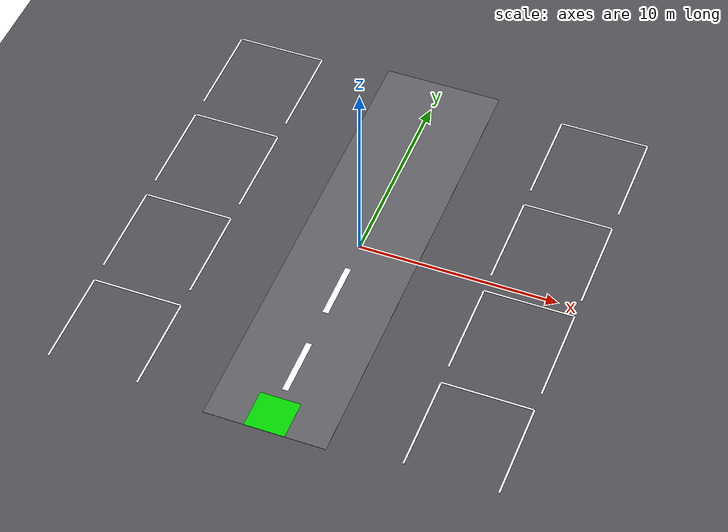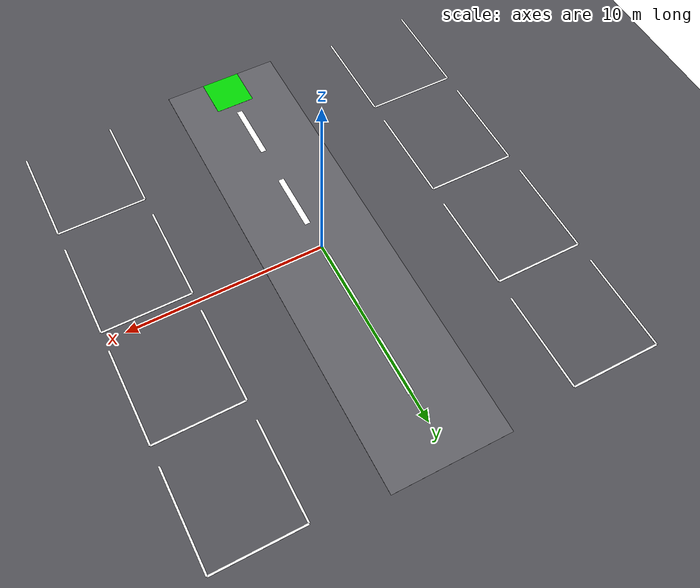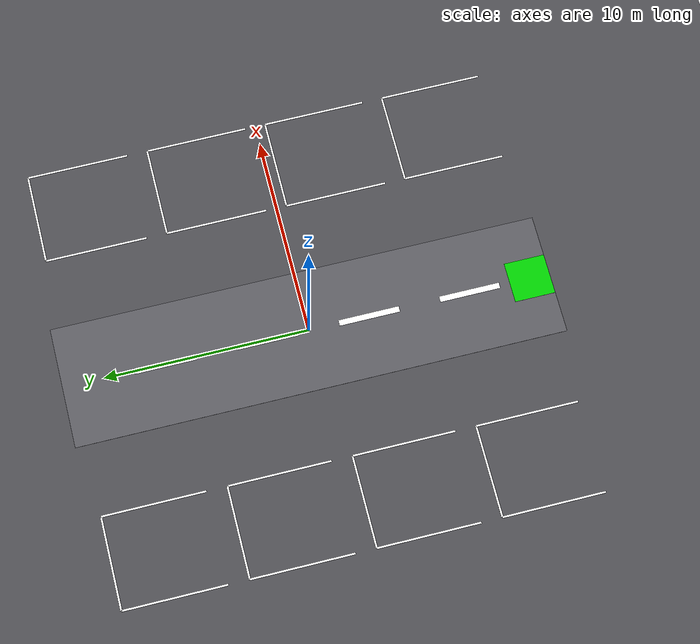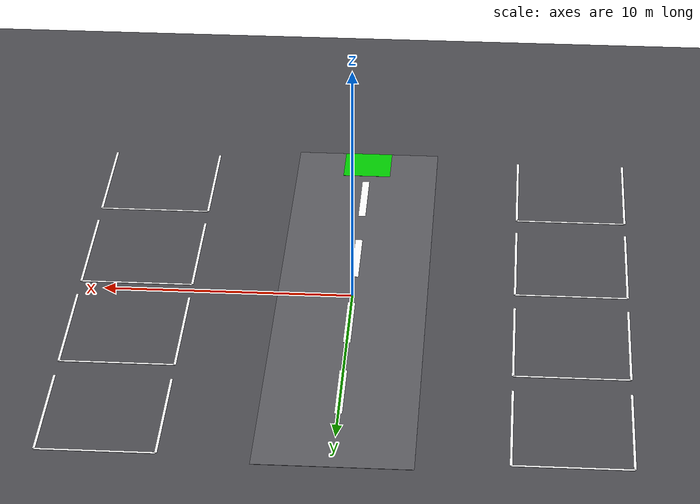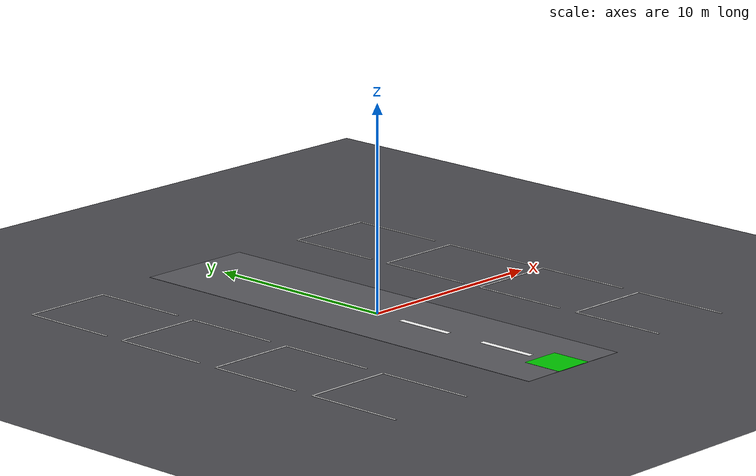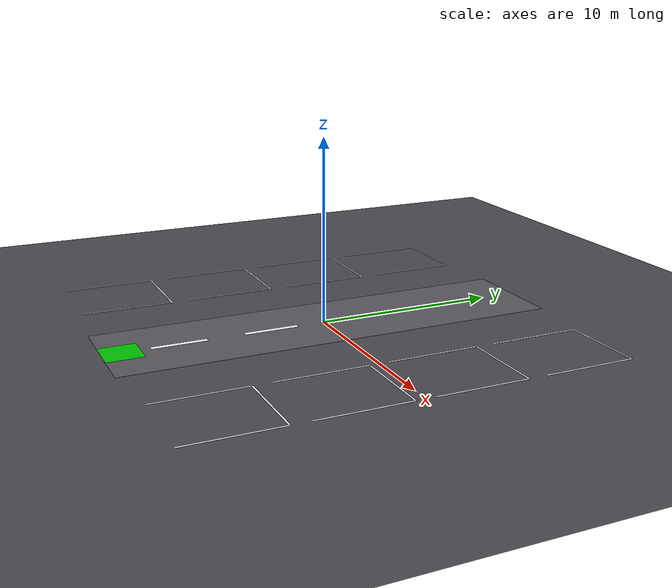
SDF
<?xml version="1.0" ?>
<sdf version="1.6">
  <world name="parking_lot_b">

    <include>
      <uri>model://sun</uri>
    </include>

    <physics type="ode">
      <real_time_update_rate>1000</real_time_update_rate>
      <max_step_size>0.001</max_step_size>
    </physics>

    <model name="ground_plane">
      <static>true</static>
      <link name="link">
        <collision name="collision">
          <geometry>
            <plane>
              <normal>0 0 1</normal>
              <size>40 40</size>
            </plane>
          </geometry>
        </collision>
        <visual name="visual">
          <geometry>
            <plane>
              <normal>0 0 1</normal>
              <size>40 40</size>
            </plane>
          </geometry>
          <material>
            <ambient>0.22 0.22 0.24 1</ambient>
            <diffuse>0.30 0.30 0.32 1</diffuse>
          </material>
        </visual>
      </link>
    </model>

    <!-- Slightly shorter lane -->
    <model name="main_lane">
      <static>true</static>
      <link name="link">
        <visual name="lane_surface">
          <pose>0 0 0.001 0 0 0</pose>
          <geometry><box><size>6 24 0.01</size></box></geometry>
          <material>
            <ambient>0.30 0.30 0.32 1</ambient>
            <diffuse>0.36 0.36 0.38 1</diffuse>
          </material>
        </visual>

        <visual name="dash1">
          <pose>0 -8 0.002 0 0 0</pose>
          <geometry><box><size>0.3 3 0.01</size></box></geometry>
          <material><diffuse>1 1 1 1</diffuse></material>
        </visual>
        <visual name="dash2">
          <pose>0 -3 0.002 0 0 0</pose>
          <geometry><box><size>0.3 3 0.01</size></box></geometry>
          <material><diffuse>1 1 1 1</diffuse></material>
        </visual>
        <visual name="dash3">
          <pose>0 2 0.002 0 0 0</pose>
          <geometry><box><size>0.3 3 0.01</size></box></geometry>
          <material><diffuse>1 1 1 1</diffuse></material>
        </visual>
        <visual name="dash4">
          <pose>0 7 0.002 0 0 0</pose>
          <geometry><box><size>0.3 3 0.01</size></box></geometry>
          <material><diffuse>1 1 1 1</diffuse></material>
        </visual>
      </link>
    </model>

    <!-- Entrance marker -->
    <model name="entrance_marker">
      <static>true</static>
      <link name="link">
        <visual name="entrance_visual">
          <pose>0 -11 0 0 0 0</pose>
          <geometry><box><size>2 2 0.02</size></box></geometry>
          <material><diffuse>0 0.8 0 1</diffuse></material>
        </visual>
      </link>
    </model>

    <!-- Parking bays: 4 per side, slightly longer and more spaced than lot A -->
    <model name="parking_bays">
      <static>true</static>
      <link name="link">

        <!-- y positions: -9, -3, 3, 9 -->

        <!-- LEFT SIDE -->
        <visual name="C1_far"><pose>-11 -9 0 0 0 0</pose>
          <geometry><box><size>0.1 5 0.01</size></box></geometry>
          <material><diffuse>1 1 1 1</diffuse></material>
        </visual>
        <visual name="C1_near"><pose>-6.5 -9 0 0 0 0</pose>
          <geometry><box><size>0.1 5 0.01</size></box></geometry>
          <material><diffuse>1 1 1 1</diffuse></material>
        </visual>
        <visual name="C1_back"><pose>-8.75 -6.5 0 0 0 0</pose>
          <geometry><box><size>4.5 0.1 0.01</size></box></geometry>
          <material><diffuse>1 1 1 1</diffuse></material>
        </visual>

        <visual name="C2_far"><pose>-11 -3 0 0 0 0</pose>
          <geometry><box><size>0.1 5 0.01</size></box></geometry>
          <material><diffuse>1 1 1 1</diffuse></material>
        </visual>
        <visual name="C2_near"><pose>-6.5 -3 0 0 0 0</pose>
          <geometry><box><size>0.1 5 0.01</size></box></geometry>
          <material><diffuse>1 1 1 1</diffuse></material>
        </visual>
        <visual name="C2_back"><pose>-8.75 -0.5 0 0 0 0</pose>
          <geometry><box><size>4.5 0.1 0.01</size></box></geometry>
          <material><diffuse>1 1 1 1</diffuse></material>
        </visual>

        <visual name="C3_far"><pose>-11 3 0 0 0 0</pose>
          <geometry><box><size>0.1 5 0.01</size></box></geometry>
          <material><diffuse>1 1 1 1</diffuse></material>
        </visual>
        <visual name="C3_near"><pose>-6.5 3 0 0 0 0</pose>
          <geometry><box><size>0.1 5 0.01</size></box></geometry>
          <material><diffuse>1 1 1 1</diffuse></material>
        </visual>
        <visual name="C3_back"><pose>-8.75 5.5 0 0 0 0</pose>
          <geometry><box><size>4.5 0.1 0.01</size></box></geometry>
          <material><diffuse>1 1 1 1</diffuse></material>
        </visual>

        <visual name="C4_far"><pose>-11 9 0 0 0 0</pose>
          <geometry><box><size>0.1 5 0.01</size></box></geometry>
          <material><diffuse>1 1 1 1</diffuse></material>
        </visual>
        <visual name="C4_near"><pose>-6.5 9 0 0 0 0</pose>
          <geometry><box><size>0.1 5 0.01</size></box></geometry>
          <material><diffuse>1 1 1 1</diffuse></material>
        </visual>
        <visual name="C4_back"><pose>-8.75 11.5 0 0 0 0</pose>
          <geometry><box><size>4.5 0.1 0.01</size></box></geometry>
          <material><diffuse>1 1 1 1</diffuse></material>
        </visual>

        <!-- RIGHT SIDE (mirrored) -->
        <visual name="D1_far"><pose>11 -9 0 0 0 0</pose>
          <geometry><box><size>0.1 5 0.01</size></box></geometry>
          <material><diffuse>1 1 1 1</diffuse></material>
        </visual>
        <visual name="D1_near"><pose>6.5 -9 0 0 0 0</pose>
          <geometry><box><size>0.1 5 0.01</size></box></geometry>
          <material><diffuse>1 1 1 1</diffuse></material>
        </visual>
        <visual name="D1_back"><pose>8.75 -6.5 0 0 0 0</pose>
          <geometry><box><size>4.5 0.1 0.01</size></box></geometry>
          <material><diffuse>1 1 1 1</diffuse></material>
        </visual>

        <visual name="D2_far"><pose>11 -3 0 0 0 0</pose>
          <geometry><box><size>0.1 5 0.01</size></box></geometry>
          <material><diffuse>1 1 1 1</diffuse></material>
        </visual>
        <visual name="D2_near"><pose>6.5 -3 0 0 0 0</pose>
          <geometry><box><size>0.1 5 0.01</size></box></geometry>
          <material><diffuse>1 1 1 1</diffuse></material>
        </visual>
        <visual name="D2_back"><pose>8.75 -0.5 0 0 0 0</pose>
          <geometry><box><size>4.5 0.1 0.01</size></box></geometry>
          <material><diffuse>1 1 1 1</diffuse></material>
        </visual>

        <visual name="D3_far"><pose>11 3 0 0 0 0</pose>
          <geometry><box><size>0.1 5 0.01</size></box></geometry>
          <material><diffuse>1 1 1 1</diffuse></material>
        </visual>
        <visual name="D3_near"><pose>6.5 3 0 0 0 0</pose>
          <geometry><box><size>0.1 5 0.01</size></box></geometry>
          <material><diffuse>1 1 1 1</diffuse></material>
        </visual>
        <visual name="D3_back"><pose>8.75 5.5 0 0 0 0</pose>
          <geometry><box><size>4.5 0.1 0.01</size></box></geometry>
          <material><diffuse>1 1 1 1</diffuse></material>
        </visual>

        <visual name="D4_far"><pose>11 9 0 0 0 0</pose>
          <geometry><box><size>0.1 5 0.01</size></box></geometry>
          <material><diffuse>1 1 1 1</diffuse></material>
        </visual>
        <visual name="D4_near"><pose>6.5 9 0 0 0 0</pose>
          <geometry><box><size>0.1 5 0.01</size></box></geometry>
          <material><diffuse>1 1 1 1</diffuse></material>
        </visual>
        <visual name="D4_back"><pose>8.75 11.5 0 0 0 0</pose>
          <geometry><box><size>4.5 0.1 0.01</size></box></geometry>
          <material><diffuse>1 1 1 1</diffuse></material>
        </visual>

      </link>
    </model>

  </world>
</sdf>
